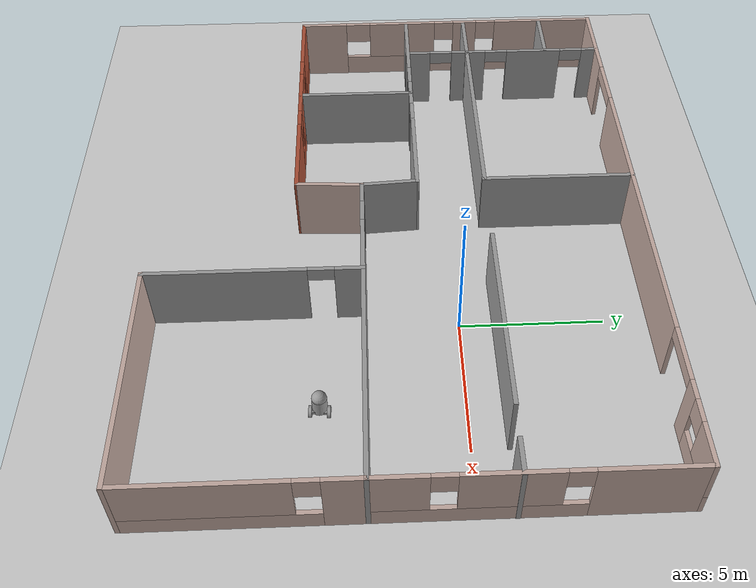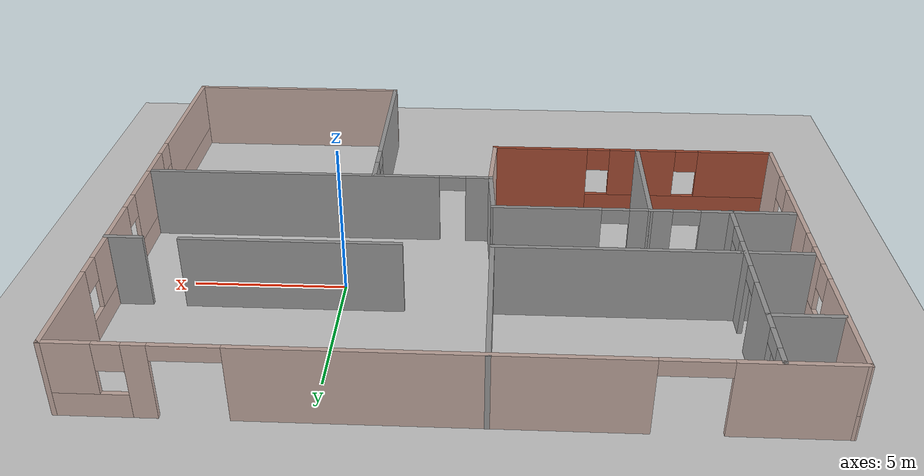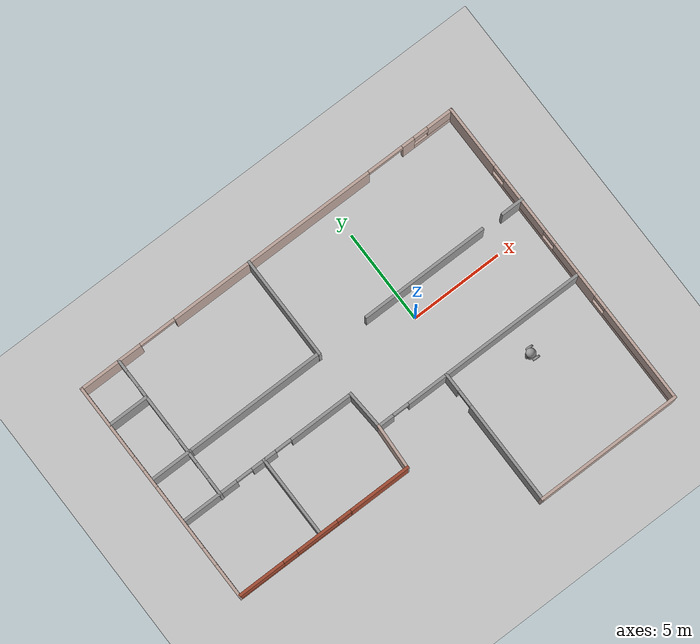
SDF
<sdf version="1.6">
 <world name="default">
  <model name="ground_plane">
   <static>1</static>
   <link name="link">
    <collision name="collision">
     <geometry><plane><normal>0 0 1</normal><size>100 100</size></plane></geometry>
     <surface><friction><ode><mu>100</mu><mu2>50</mu2></ode></friction></surface>
    </collision>
    <visual name="visual">
     <cast_shadows>0</cast_shadows>
     <geometry><plane><normal>0 0 1</normal><size>100 100</size></plane></geometry>
     <material>
      <script><uri>file://media/materials/scripts/gazebo.material</uri><name>Gazebo/Grey</name></script>
     </material>
    </visual>
   </link>
  </model>
  <model name="MyHouse">
   <pose>-3.71946 -1.98455 0 0 -0 0</pose>
   <link name="Wall_10">
    <pose>-8.45774 0.74582 0 0 -0 3.14159</pose>
    <visual name="Wall_10_Visual_0">
     <pose>-1.97921 0 1.25 0 -0 0</pose>
     <geometry><box><size>0.791588 0.15 2.5</size></box></geometry>
     <material>
      <script><uri>file://media/materials/scripts/gazebo.material</uri><name>Gazebo/Grey</name></script>
      <ambient>1 1 1 1</ambient>
     </material>
     <meta><layer>0</layer></meta>
    </visual>
    <collision name="Wall_10_Collision_0">
     <geometry><box><size>0.791588 0.15 2.5</size></box></geometry>
     <pose>-1.97921 0 1.25 0 -0 0</pose>
    </collision>
    <visual name="Wall_10_Visual_1">
     <pose>0.845794 0 1.25 0 -0 0</pose>
     <geometry><box><size>3.05841 0.15 2.5</size></box></geometry>
     <material>
      <script><uri>file://media/materials/scripts/gazebo.material</uri><name>Gazebo/Grey</name></script>
      <ambient>1 1 1 1</ambient>
     </material>
     <meta><layer>0</layer></meta>
    </visual>
    <collision name="Wall_10_Collision_1">
     <geometry><box><size>3.05841 0.15 2.5</size></box></geometry>
     <pose>0.845794 0 1.25 0 -0 0</pose>
    </collision>
    <visual name="Wall_10_Visual_2">
     <pose>-1.13341 0 2.25 0 -0 0</pose>
     <geometry><box><size>0.9 0.15 0.5</size></box></geometry>
     <material>
      <script><uri>file://media/materials/scripts/gazebo.material</uri><name>Gazebo/Grey</name></script>
      <ambient>1 1 1 1</ambient>
     </material>
     <meta><layer>0</layer></meta>
    </visual>
    <collision name="Wall_10_Collision_2">
     <geometry><box><size>0.9 0.15 0.5</size></box></geometry>
     <pose>-1.13341 0 2.25 0 -0 0</pose>
    </collision>
   </link>
   <link name="Wall_12">
    <pose>-3.60774 0.74582 0 0 -0 0</pose>
    <visual name="Wall_12_Visual_0">
     <pose>-2.24932 0 1.25 0 -0 0</pose>
     <geometry><box><size>0.751361 0.15 2.5</size></box></geometry>
     <material>
      <script><uri>file://media/materials/scripts/gazebo.material</uri><name>Gazebo/Grey</name></script>
      <ambient>1 1 1 1</ambient>
     </material>
     <meta><layer>0</layer></meta>
    </visual>
    <collision name="Wall_12_Collision_0">
     <geometry><box><size>0.751361 0.15 2.5</size></box></geometry>
     <pose>-2.24932 0 1.25 0 -0 0</pose>
    </collision>
    <visual name="Wall_12_Visual_1">
     <pose>0.82568 0 1.25 0 -0 0</pose>
     <geometry><box><size>3.59864 0.15 2.5</size></box></geometry>
     <material>
      <script><uri>file://media/materials/scripts/gazebo.material</uri><name>Gazebo/Grey</name></script>
      <ambient>1 1 1 1</ambient>
     </material>
     <meta><layer>0</layer></meta>
    </visual>
    <collision name="Wall_12_Collision_1">
     <geometry><box><size>3.59864 0.15 2.5</size></box></geometry>
     <pose>0.82568 0 1.25 0 -0 0</pose>
    </collision>
    <visual name="Wall_12_Visual_2">
     <pose>-1.42364 0 2.25 0 -0 0</pose>
     <geometry><box><size>0.9 0.15 0.5</size></box></geometry>
     <material>
      <script><uri>file://media/materials/scripts/gazebo.material</uri><name>Gazebo/Grey</name></script>
      <ambient>1 1 1 1</ambient>
     </material>
     <meta><layer>0</layer></meta>
    </visual>
    <collision name="Wall_12_Collision_2">
     <geometry><box><size>0.9 0.15 0.5</size></box></geometry>
     <pose>-1.42364 0 2.25 0 -0 0</pose>
    </collision>
   </link>
   <link name="Wall_13">
    <collision name="Wall_13_Collision">
     <geometry><box><size>2.15429 0.15 2.5</size></box></geometry>
     <pose>0 0 1.25 0 -0 0</pose>
    </collision>
    <visual name="Wall_13_Visual">
     <pose>0 0 1.25 0 -0 0</pose>
     <geometry><box><size>2.15429 0.15 2.5</size></box></geometry>
     <material>
      <script><uri>file://media/materials/scripts/gazebo.material</uri><name>Gazebo/Grey</name></script>
      <ambient>1 1 1 1</ambient>
     </material>
     <meta><layer>0</layer></meta>
    </visual>
    <pose>-0.995053 -0.254364 0 0 0 -1.5082</pose>
   </link>
   <link name="Wall_15">
    <pose>-8.75239 4.64524 0 0 -0 1.5708</pose>
    <visual name="Wall_15_Visual_0">
     <pose>-3.49358 0 1.25 0 -0 0</pose>
     <geometry><box><size>1.01284 0.15 2.5</size></box></geometry>
     <material>
      <script><uri>file://media/materials/scripts/gazebo.material</uri><name>Gazebo/Grey</name></script>
      <ambient>1 1 1 1</ambient>
     </material>
     <meta><layer>0</layer></meta>
    </visual>
    <collision name="Wall_15_Collision_0">
     <geometry><box><size>1.01284 0.15 2.5</size></box></geometry>
     <pose>-3.49358 0 1.25 0 -0 0</pose>
    </collision>
    <visual name="Wall_15_Visual_1">
     <pose>-1.39069 0 1.25 0 -0 0</pose>
     <geometry><box><size>1.39295 0.15 2.5</size></box></geometry>
     <material>
      <script><uri>file://media/materials/scripts/gazebo.material</uri><name>Gazebo/Grey</name></script>
      <ambient>1 1 1 1</ambient>
     </material>
     <meta><layer>0</layer></meta>
    </visual>
    <collision name="Wall_15_Collision_1">
     <geometry><box><size>1.39295 0.15 2.5</size></box></geometry>
     <pose>-1.39069 0 1.25 0 -0 0</pose>
    </collision>
    <visual name="Wall_15_Visual_2">
     <pose>1.31458 0 1.25 0 -0 0</pose>
     <geometry><box><size>2.2176 0.15 2.5</size></box></geometry>
     <material>
      <script><uri>file://media/materials/scripts/gazebo.material</uri><name>Gazebo/Grey</name></script>
      <ambient>1 1 1 1</ambient>
     </material>
     <meta><layer>0</layer></meta>
    </visual>
    <collision name="Wall_15_Collision_2">
     <geometry><box><size>2.2176 0.15 2.5</size></box></geometry>
     <pose>1.31458 0 1.25 0 -0 0</pose>
    </collision>
    <visual name="Wall_15_Visual_3">
     <pose>3.66169 0 1.25 0 -0 0</pose>
     <geometry><box><size>0.676613 0.15 2.5</size></box></geometry>
     <material>
      <script><uri>file://media/materials/scripts/gazebo.material</uri><name>Gazebo/Grey</name></script>
      <ambient>1 1 1 1</ambient>
     </material>
     <meta><layer>0</layer></meta>
    </visual>
    <collision name="Wall_15_Collision_3">
     <geometry><box><size>0.676613 0.15 2.5</size></box></geometry>
     <pose>3.66169 0 1.25 0 -0 0</pose>
    </collision>
    <visual name="Wall_15_Visual_4">
     <pose>-2.53716 0 2.25 0 -0 0</pose>
     <geometry><box><size>0.9 0.15 0.5</size></box></geometry>
     <material>
      <script><uri>file://media/materials/scripts/gazebo.material</uri><name>Gazebo/Grey</name></script>
      <ambient>1 1 1 1</ambient>
     </material>
     <meta><layer>0</layer></meta>
    </visual>
    <collision name="Wall_15_Collision_4">
     <geometry><box><size>0.9 0.15 0.5</size></box></geometry>
     <pose>-2.53716 0 2.25 0 -0 0</pose>
    </collision>
    <visual name="Wall_15_Visual_5">
     <pose>-0.244216 0 2.25 0 -0 0</pose>
     <geometry><box><size>0.9 0.15 0.5</size></box></geometry>
     <material>
      <script><uri>file://media/materials/scripts/gazebo.material</uri><name>Gazebo/Grey</name></script>
      <ambient>1 1 1 1</ambient>
     </material>
     <meta><layer>0</layer></meta>
    </visual>
    <collision name="Wall_15_Collision_5">
     <geometry><box><size>0.9 0.15 0.5</size></box></geometry>
     <pose>-0.244216 0 2.25 0 -0 0</pose>
    </collision>
    <visual name="Wall_15_Visual_6">
     <pose>2.87339 0 2.25 0 -0 0</pose>
     <geometry><box><size>0.9 0.15 0.5</size></box></geometry>
     <material>
      <script><uri>file://media/materials/scripts/gazebo.material</uri><name>Gazebo/Grey</name></script>
      <ambient>1 1 1 1</ambient>
     </material>
     <meta><layer>0</layer></meta>
    </visual>
    <collision name="Wall_15_Collision_6">
     <geometry><box><size>0.9 0.15 0.5</size></box></geometry>
     <pose>2.87339 0 2.25 0 -0 0</pose>
    </collision>
   </link>
   <link name="Wall_17">
    <collision name="Wall_17_Collision">
     <geometry><box><size>7.75 0.15 2.5</size></box></geometry>
     <pose>0 0 1.25 0 -0 0</pose>
    </collision>
    <visual name="Wall_17_Visual">
     <pose>0 0 1.25 0 -0 0</pose>
     <geometry><box><size>7.75 0.15 2.5</size></box></geometry>
     <material>
      <script><uri>file://media/materials/scripts/gazebo.material</uri><name>Gazebo/Grey</name></script>
      <ambient>1 1 1 1</ambient>
     </material>
     <meta><layer>0</layer></meta>
    </visual>
    <pose>-4.87194 3.19421 0 0 -0 0</pose>
   </link>
   <link name="Wall_18">
    <collision name="Wall_18_Collision">
     <geometry><box><size>5.58045 0.15 2.5</size></box></geometry>
     <pose>0 0 1.25 0 -0 0</pose>
    </collision>
    <visual name="Wall_18_Visual">
     <pose>0 0 1.25 0 -0 0</pose>
     <geometry><box><size>5.58045 0.15 2.5</size></box></geometry>
     <material>
      <script><uri>file://media/materials/scripts/gazebo.material</uri><name>Gazebo/Grey</name></script>
      <ambient>1 1 1 1</ambient>
     </material>
     <meta><layer>0</layer></meta>
    </visual>
    <pose>-1.07194 5.88932 0 0 -0 1.5708</pose>
   </link>
   <link name="Wall_2">
    <pose>-0.007362 8.59545 0 0 -0 0</pose>
    <visual name="Wall_2_Visual_0">
     <pose>-9.24484 0 1.25 0 -0 0</pose>
     <geometry><box><size>3.51031 0.15 2.5</size></box></geometry>
     <material>
      <script><uri>file://media/materials/scripts/gazebo.material</uri><name>Gazebo/Grey</name></script>
      <ambient>0.760784 0.662745 0.627451 1</ambient>
     </material>
     <meta><layer>0</layer></meta>
    </visual>
    <collision name="Wall_2_Collision_0">
     <geometry><box><size>3.51031 0.15 2.5</size></box></geometry>
     <pose>-9.24484 0 1.25 0 -0 0</pose>
    </collision>
    <visual name="Wall_2_Visual_1">
     <pose>0.256231 0 1.25 0 -0 0</pose>
     <geometry><box><size>11.4918 0.15 2.5</size></box></geometry>
     <material>
      <script><uri>file://media/materials/scripts/gazebo.material</uri><name>Gazebo/Grey</name></script>
      <ambient>0.760784 0.662745 0.627451 1</ambient>
     </material>
     <meta><layer>0</layer></meta>
    </visual>
    <collision name="Wall_2_Collision_1">
     <geometry><box><size>11.4918 0.15 2.5</size></box></geometry>
     <pose>0.256231 0 1.25 0 -0 0</pose>
    </collision>
    <visual name="Wall_2_Visual_2">
     <pose>8.34893 0 1.25 0 -0 0</pose>
     <geometry><box><size>0.693556 0.15 2.5</size></box></geometry>
     <material>
      <script><uri>file://media/materials/scripts/gazebo.material</uri><name>Gazebo/Grey</name></script>
      <ambient>0.760784 0.662745 0.627451 1</ambient>
     </material>
     <meta><layer>0</layer></meta>
    </visual>
    <collision name="Wall_2_Collision_2">
     <geometry><box><size>0.693556 0.15 2.5</size></box></geometry>
     <pose>8.34893 0 1.25 0 -0 0</pose>
    </collision>
    <visual name="Wall_2_Visual_3">
     <pose>9.84785 0 0.4 0 -0 0</pose>
     <geometry><box><size>2.3043 0.15 0.8</size></box></geometry>
     <material>
      <script><uri>file://media/materials/scripts/gazebo.material</uri><name>Gazebo/Grey</name></script>
      <ambient>0.760784 0.662745 0.627451 1</ambient>
     </material>
     <meta><layer>0</layer></meta>
    </visual>
    <collision name="Wall_2_Collision_3">
     <geometry><box><size>2.3043 0.15 0.8</size></box></geometry>
     <pose>9.84785 0 0.4 0 -0 0</pose>
    </collision>
    <visual name="Wall_2_Visual_4">
     <pose>10.2479 0 1.65 0 -0 0</pose>
     <geometry><box><size>1.50429 0.15 1.7</size></box></geometry>
     <material>
      <script><uri>file://media/materials/scripts/gazebo.material</uri><name>Gazebo/Grey</name></script>
      <ambient>0.760784 0.662745 0.627451 1</ambient>
     </material>
     <meta><layer>0</layer></meta>
    </visual>
    <collision name="Wall_2_Collision_4">
     <geometry><box><size>1.50429 0.15 1.7</size></box></geometry>
     <pose>10.2479 0 1.65 0 -0 0</pose>
    </collision>
    <visual name="Wall_2_Visual_5">
     <pose>9.09571 0 2.05 0 -0 0</pose>
     <geometry><box><size>0.8 0.15 0.9</size></box></geometry>
     <material>
      <script><uri>file://media/materials/scripts/gazebo.material</uri><name>Gazebo/Grey</name></script>
      <ambient>0.760784 0.662745 0.627451 1</ambient>
     </material>
     <meta><layer>0</layer></meta>
    </visual>
    <collision name="Wall_2_Collision_5">
     <geometry><box><size>0.8 0.15 0.9</size></box></geometry>
     <pose>9.09571 0 2.05 0 -0 0</pose>
    </collision>
    <visual name="Wall_2_Visual_6">
     <pose>-6.48969 0 2.25 0 -0 0</pose>
     <geometry><box><size>2 0.15 0.5</size></box></geometry>
     <material>
      <script><uri>file://media/materials/scripts/gazebo.material</uri><name>Gazebo/Grey</name></script>
      <ambient>0.760784 0.662745 0.627451 1</ambient>
     </material>
     <meta><layer>0</layer></meta>
    </visual>
    <collision name="Wall_2_Collision_6">
     <geometry><box><size>2 0.15 0.5</size></box></geometry>
     <pose>-6.48969 0 2.25 0 -0 0</pose>
    </collision>
    <visual name="Wall_2_Visual_7">
     <pose>7.00215 0 2.25 0 -0 0</pose>
     <geometry><box><size>2 0.15 0.5</size></box></geometry>
     <material>
      <script><uri>file://media/materials/scripts/gazebo.material</uri><name>Gazebo/Grey</name></script>
      <ambient>0.760784 0.662745 0.627451 1</ambient>
     </material>
     <meta><layer>0</layer></meta>
    </visual>
    <collision name="Wall_2_Collision_7">
     <geometry><box><size>2 0.15 0.5</size></box></geometry>
     <pose>7.00215 0 2.25 0 -0 0</pose>
    </collision>
   </link>
   <link name="Wall_20">
    <collision name="Wall_20_Collision">
     <geometry><box><size>2.25 0.15 2.5</size></box></geometry>
     <pose>0 0 1.25 0 -0 0</pose>
    </collision>
    <visual name="Wall_20_Visual">
     <pose>0 0 1.25 0 -0 0</pose>
     <geometry><box><size>2.25 0.15 2.5</size></box></geometry>
     <material>
      <script><uri>file://media/materials/scripts/gazebo.material</uri><name>Gazebo/Grey</name></script>
      <ambient>1 1 1 1</ambient>
     </material>
     <meta><layer>0</layer></meta>
    </visual>
    <pose>-9.72194 3.19421 0 0 -0 3.14159</pose>
   </link>
   <link name="Wall_23">
    <collision name="Wall_23_Collision">
     <geometry><box><size>2.25 0.15 2.5</size></box></geometry>
     <pose>0 0 1.25 0 -0 0</pose>
    </collision>
    <visual name="Wall_23_Visual">
     <pose>0 0 1.25 0 -0 0</pose>
     <geometry><box><size>2.25 0.15 2.5</size></box></geometry>
     <material>
      <script><uri>file://media/materials/scripts/gazebo.material</uri><name>Gazebo/Grey</name></script>
      <ambient>1 1 1 1</ambient>
     </material>
     <meta><layer>0</layer></meta>
    </visual>
    <pose>-9.8024 6.45261 0 0 -0 3.14159</pose>
   </link>
   <link name="Wall_25">
    <collision name="Wall_25_Collision">
     <geometry><box><size>7 0.15 2.5</size></box></geometry>
     <pose>0 0 1.25 0 -0 0</pose>
    </collision>
    <visual name="Wall_25_Visual">
     <pose>0 0 1.25 0 -0 0</pose>
     <geometry><box><size>7 0.15 2.5</size></box></geometry>
     <material>
      <script><uri>file://media/materials/scripts/gazebo.material</uri><name>Gazebo/Grey</name></script>
      <ambient>1 1 1 1</ambient>
     </material>
     <meta><layer>0</layer></meta>
    </visual>
    <pose>5.17189 3.19421 0 0 -0 0</pose>
   </link>
   <link name="Wall_27">
    <collision name="Wall_27_Collision">
     <geometry><box><size>1.25 0.15 2.5</size></box></geometry>
     <pose>0 0 1.25 0 -0 0</pose>
    </collision>
    <visual name="Wall_27_Visual">
     <pose>0 0 1.25 0 -0 0</pose>
     <geometry><box><size>1.25 0.15 2.5</size></box></geometry>
     <material>
      <script><uri>file://media/materials/scripts/gazebo.material</uri><name>Gazebo/Grey</name></script>
      <ambient>1 1 1 1</ambient>
     </material>
     <meta><layer>0</layer></meta>
    </visual>
    <pose>10.3825 3.17409 0 0 -0 0</pose>
   </link>
   <link name="Wall_29">
    <pose>10.9176 -4.92955 0 0 0 -1.5708</pose>
    <visual name="Wall_29_Visual_0">
     <pose>-3.06879 0 1.25 0 -0 0</pose>
     <geometry><box><size>1.36242 0.15 2.5</size></box></geometry>
     <material>
      <script><uri>file://media/materials/scripts/gazebo.material</uri><name>Gazebo/Grey</name></script>
      <ambient>0.760784 0.662745 0.627451 1</ambient>
     </material>
     <meta><layer>0</layer></meta>
    </visual>
    <collision name="Wall_29_Collision_0">
     <geometry><box><size>1.36242 0.15 2.5</size></box></geometry>
     <pose>-3.06879 0 1.25 0 -0 0</pose>
    </collision>
    <visual name="Wall_29_Visual_1">
     <pose>0.681209 0 0.35 0 -0 0</pose>
     <geometry><box><size>6.13758 0.15 0.7</size></box></geometry>
     <material>
      <script><uri>file://media/materials/scripts/gazebo.material</uri><name>Gazebo/Grey</name></script>
      <ambient>0.760784 0.662745 0.627451 1</ambient>
     </material>
     <meta><layer>0</layer></meta>
    </visual>
    <collision name="Wall_29_Collision_1">
     <geometry><box><size>6.13758 0.15 0.7</size></box></geometry>
     <pose>0.681209 0 0.35 0 -0 0</pose>
    </collision>
    <visual name="Wall_29_Visual_2">
     <pose>1.08121 0 1.6 0 -0 0</pose>
     <geometry><box><size>5.33758 0.15 1.8</size></box></geometry>
     <material>
      <script><uri>file://media/materials/scripts/gazebo.material</uri><name>Gazebo/Grey</name></script>
      <ambient>0.760784 0.662745 0.627451 1</ambient>
     </material>
     <meta><layer>0</layer></meta>
    </visual>
    <collision name="Wall_29_Collision_2">
     <geometry><box><size>5.33758 0.15 1.8</size></box></geometry>
     <pose>1.08121 0 1.6 0 -0 0</pose>
    </collision>
    <visual name="Wall_29_Visual_3">
     <pose>-1.98758 0 2.1 0 -0 0</pose>
     <geometry><box><size>0.8 0.15 0.8</size></box></geometry>
     <material>
      <script><uri>file://media/materials/scripts/gazebo.material</uri><name>Gazebo/Grey</name></script>
      <ambient>0.760784 0.662745 0.627451 1</ambient>
     </material>
     <meta><layer>0</layer></meta>
    </visual>
    <collision name="Wall_29_Collision_3">
     <geometry><box><size>0.8 0.15 0.8</size></box></geometry>
     <pose>-1.98758 0 2.1 0 -0 0</pose>
    </collision>
   </link>
   <link name="Wall_3">
    <pose>10.9176 3.67045 0 0 0 -1.5708</pose>
    <visual name="Wall_3_Visual_0">
     <pose>-3.27648 0 1.25 0 -0 0</pose>
     <geometry><box><size>3.44705 0.15 2.5</size></box></geometry>
     <material>
      <script><uri>file://media/materials/scripts/gazebo.material</uri><name>Gazebo/Grey</name></script>
      <ambient>0.760784 0.662745 0.627451 1</ambient>
     </material>
     <meta><layer>0</layer></meta>
    </visual>
    <collision name="Wall_3_Collision_0">
     <geometry><box><size>3.44705 0.15 2.5</size></box></geometry>
     <pose>-3.27648 0 1.25 0 -0 0</pose>
    </collision>
    <visual name="Wall_3_Visual_1">
     <pose>1.72352 0 0.35 0 -0 0</pose>
     <geometry><box><size>6.55295 0.15 0.7</size></box></geometry>
     <material>
      <script><uri>file://media/materials/scripts/gazebo.material</uri><name>Gazebo/Grey</name></script>
      <ambient>0.760784 0.662745 0.627451 1</ambient>
     </material>
     <meta><layer>0</layer></meta>
    </visual>
    <collision name="Wall_3_Collision_1">
     <geometry><box><size>6.55295 0.15 0.7</size></box></geometry>
     <pose>1.72352 0 0.35 0 -0 0</pose>
    </collision>
    <visual name="Wall_3_Visual_2">
     <pose>0.788006 0 1.6 0 -0 0</pose>
     <geometry><box><size>3.08192 0.15 1.8</size></box></geometry>
     <material>
      <script><uri>file://media/materials/scripts/gazebo.material</uri><name>Gazebo/Grey</name></script>
      <ambient>0.760784 0.662745 0.627451 1</ambient>
     </material>
     <meta><layer>0</layer></meta>
    </visual>
    <collision name="Wall_3_Collision_2">
     <geometry><box><size>3.08192 0.15 1.8</size></box></geometry>
     <pose>0.788006 0 1.6 0 -0 0</pose>
    </collision>
    <visual name="Wall_3_Visual_3">
     <pose>4.06448 0 1.6 0 -0 0</pose>
     <geometry><box><size>1.87103 0.15 1.8</size></box></geometry>
     <material>
      <script><uri>file://media/materials/scripts/gazebo.material</uri><name>Gazebo/Grey</name></script>
      <ambient>0.760784 0.662745 0.627451 1</ambient>
     </material>
     <meta><layer>0</layer></meta>
    </visual>
    <collision name="Wall_3_Collision_3">
     <geometry><box><size>1.87103 0.15 1.8</size></box></geometry>
     <pose>4.06448 0 1.6 0 -0 0</pose>
    </collision>
    <visual name="Wall_3_Visual_4">
     <pose>-1.15295 0 2.1 0 -0 0</pose>
     <geometry><box><size>0.8 0.15 0.8</size></box></geometry>
     <material>
      <script><uri>file://media/materials/scripts/gazebo.material</uri><name>Gazebo/Grey</name></script>
      <ambient>0.760784 0.662745 0.627451 1</ambient>
     </material>
     <meta><layer>0</layer></meta>
    </visual>
    <collision name="Wall_3_Collision_4">
     <geometry><box><size>0.8 0.15 0.8</size></box></geometry>
     <pose>-1.15295 0 2.1 0 -0 0</pose>
    </collision>
    <visual name="Wall_3_Visual_5">
     <pose>2.72897 0 2.1 0 -0 0</pose>
     <geometry><box><size>0.8 0.15 0.8</size></box></geometry>
     <material>
      <script><uri>file://media/materials/scripts/gazebo.material</uri><name>Gazebo/Grey</name></script>
      <ambient>0.760784 0.662745 0.627451 1</ambient>
     </material>
     <meta><layer>0</layer></meta>
    </visual>
    <collision name="Wall_3_Collision_5">
     <geometry><box><size>0.8 0.15 0.8</size></box></geometry>
     <pose>2.72897 0 2.1 0 -0 0</pose>
    </collision>
   </link>
   <link name="Wall_30">
    <collision name="Wall_30_Collision">
     <geometry><box><size>8 0.15 2.5</size></box></geometry>
     <pose>0 0 1.25 0 -0 0</pose>
    </collision>
    <visual name="Wall_30_Visual">
     <pose>0 0 1.25 0 -0 0</pose>
     <geometry><box><size>8 0.15 2.5</size></box></geometry>
     <material>
      <script><uri>file://media/materials/scripts/gazebo.material</uri><name>Gazebo/Grey</name></script>
      <ambient>0.760784 0.662745 0.627451 1</ambient>
     </material>
     <meta><layer>0</layer></meta>
    </visual>
    <pose>6.99264 -8.60455 0 0 -0 3.14159</pose>
   </link>
   <link name="Wall_31">
    <pose>3.06764 -4.92955 0 0 -0 1.5708</pose>
    <visual name="Wall_31_Visual_0">
     <pose>-0.966637 0 1.25 0 -0 0</pose>
     <geometry><box><size>5.56673 0.15 2.5</size></box></geometry>
     <material>
      <script><uri>file://media/materials/scripts/gazebo.material</uri><name>Gazebo/Grey</name></script>
      <ambient>1 1 1 1</ambient>
     </material>
     <meta><layer>0</layer></meta>
    </visual>
    <collision name="Wall_31_Collision_0">
     <geometry><box><size>5.56673 0.15 2.5</size></box></geometry>
     <pose>-0.966637 0 1.25 0 -0 0</pose>
    </collision>
    <visual name="Wall_31_Visual_1">
     <pose>3.23336 0 1.25 0 -0 0</pose>
     <geometry><box><size>1.03327 0.15 2.5</size></box></geometry>
     <material>
      <script><uri>file://media/materials/scripts/gazebo.material</uri><name>Gazebo/Grey</name></script>
      <ambient>1 1 1 1</ambient>
     </material>
     <meta><layer>0</layer></meta>
    </visual>
    <collision name="Wall_31_Collision_1">
     <geometry><box><size>1.03327 0.15 2.5</size></box></geometry>
     <pose>3.23336 0 1.25 0 -0 0</pose>
    </collision>
    <visual name="Wall_31_Visual_2">
     <pose>2.26673 0 2.25 0 -0 0</pose>
     <geometry><box><size>0.9 0.15 0.5</size></box></geometry>
     <material>
      <script><uri>file://media/materials/scripts/gazebo.material</uri><name>Gazebo/Grey</name></script>
      <ambient>1 1 1 1</ambient>
     </material>
     <meta><layer>0</layer></meta>
    </visual>
    <collision name="Wall_31_Collision_2">
     <geometry><box><size>0.9 0.15 0.5</size></box></geometry>
     <pose>2.26673 0 2.25 0 -0 0</pose>
    </collision>
   </link>
   <link name="Wall_4">
    <pose>4.99264 -1.25455 0 0 -0 3.14159</pose>
    <visual name="Wall_4_Visual_0">
     <pose>-0.913533 0 1.25 0 -0 0</pose>
     <geometry><box><size>10.1729 0.15 2.5</size></box></geometry>
     <material>
      <script><uri>file://media/materials/scripts/gazebo.material</uri><name>Gazebo/Grey</name></script>
      <ambient>1 1 1 1</ambient>
     </material>
     <meta><layer>0</layer></meta>
    </visual>
    <collision name="Wall_4_Collision_0">
     <geometry><box><size>10.1729 0.15 2.5</size></box></geometry>
     <pose>-0.913533 0 1.25 0 -0 0</pose>
    </collision>
    <visual name="Wall_4_Visual_1">
     <pose>5.53647 0 1.25 0 -0 0</pose>
     <geometry><box><size>0.927067 0.15 2.5</size></box></geometry>
     <material>
      <script><uri>file://media/materials/scripts/gazebo.material</uri><name>Gazebo/Grey</name></script>
      <ambient>1 1 1 1</ambient>
     </material>
     <meta><layer>0</layer></meta>
    </visual>
    <collision name="Wall_4_Collision_1">
     <geometry><box><size>0.927067 0.15 2.5</size></box></geometry>
     <pose>5.53647 0 1.25 0 -0 0</pose>
    </collision>
    <visual name="Wall_4_Visual_2">
     <pose>4.62293 0 2.25 0 -0 0</pose>
     <geometry><box><size>0.9 0.15 0.5</size></box></geometry>
     <material>
      <script><uri>file://media/materials/scripts/gazebo.material</uri><name>Gazebo/Grey</name></script>
      <ambient>1 1 1 1</ambient>
     </material>
     <meta><layer>0</layer></meta>
    </visual>
    <collision name="Wall_4_Collision_2">
     <geometry><box><size>0.9 0.15 0.5</size></box></geometry>
     <pose>4.62293 0 2.25 0 -0 0</pose>
    </collision>
   </link>
   <link name="Wall_5">
    <collision name="Wall_5_Collision">
     <geometry><box><size>2.50297 0.15 2.5</size></box></geometry>
     <pose>0 0 1.25 0 -0 0</pose>
    </collision>
    <visual name="Wall_5_Visual">
     <pose>0 0 1.25 0 -0 0</pose>
     <geometry><box><size>2.50297 0.15 2.5</size></box></geometry>
     <material>
      <script><uri>file://media/materials/scripts/gazebo.material</uri><name>Gazebo/Grey</name></script>
      <ambient>0.760784 0.662745 0.627451 1</ambient>
     </material>
     <meta><layer>0</layer></meta>
    </visual>
    <pose>-0.992458 -2.4295 0 0 0 -1.6219</pose>
   </link>
   <link name="Wall_6">
    <pose>-5.97755 -3.60445 0 0 -0 3.14159</pose>
    <visual name="Wall_6_Visual_0">
     <pose>-3.30088 0 1.25 0 -0 0</pose>
     <geometry><box><size>3.39823 0.15 2.5</size></box></geometry>
     <material>
      <script><uri>file://media/materials/scripts/gazebo.material</uri><name>Gazebo/Bricks</name></script>
      <ambient>1 1 1 1</ambient>
     </material>
     <meta><layer>0</layer></meta>
    </visual>
    <collision name="Wall_6_Collision_0">
     <geometry><box><size>3.39823 0.15 2.5</size></box></geometry>
     <pose>-3.30088 0 1.25 0 -0 0</pose>
    </collision>
    <visual name="Wall_6_Visual_1">
     <pose>1.69912 0 0.35 0 -0 0</pose>
     <geometry><box><size>6.60177 0.15 0.7</size></box></geometry>
     <material>
      <script><uri>file://media/materials/scripts/gazebo.material</uri><name>Gazebo/Bricks</name></script>
      <ambient>1 1 1 1</ambient>
     </material>
     <meta><layer>0</layer></meta>
    </visual>
    <collision name="Wall_6_Collision_1">
     <geometry><box><size>6.60177 0.15 0.7</size></box></geometry>
     <pose>1.69912 0 0.35 0 -0 0</pose>
    </collision>
    <visual name="Wall_6_Visual_2">
     <pose>0.37341 0 1.6 0 -0 0</pose>
     <geometry><box><size>2.35035 0.15 1.8</size></box></geometry>
     <material>
      <script><uri>file://media/materials/scripts/gazebo.material</uri><name>Gazebo/Bricks</name></script>
      <ambient>1 1 1 1</ambient>
     </material>
     <meta><layer>0</layer></meta>
    </visual>
    <collision name="Wall_6_Collision_2">
     <geometry><box><size>2.35035 0.15 1.8</size></box></geometry>
     <pose>0.37341 0 1.6 0 -0 0</pose>
    </collision>
    <visual name="Wall_6_Visual_3">
     <pose>3.67429 0 1.6 0 -0 0</pose>
     <geometry><box><size>2.65141 0.15 1.8</size></box></geometry>
     <material>
      <script><uri>file://media/materials/scripts/gazebo.material</uri><name>Gazebo/Bricks</name></script>
      <ambient>1 1 1 1</ambient>
     </material>
     <meta><layer>0</layer></meta>
    </visual>
    <collision name="Wall_6_Collision_3">
     <geometry><box><size>2.65141 0.15 1.8</size></box></geometry>
     <pose>3.67429 0 1.6 0 -0 0</pose>
    </collision>
    <visual name="Wall_6_Visual_4">
     <pose>-1.20177 0 2.1 0 -0 0</pose>
     <geometry><box><size>0.8 0.15 0.8</size></box></geometry>
     <material>
      <script><uri>file://media/materials/scripts/gazebo.material</uri><name>Gazebo/Bricks</name></script>
      <ambient>1 1 1 1</ambient>
     </material>
     <meta><layer>0</layer></meta>
    </visual>
    <collision name="Wall_6_Collision_4">
     <geometry><box><size>0.8 0.15 0.8</size></box></geometry>
     <pose>-1.20177 0 2.1 0 -0 0</pose>
    </collision>
    <visual name="Wall_6_Visual_5">
     <pose>1.94859 0 2.1 0 -0 0</pose>
     <geometry><box><size>0.8 0.15 0.8</size></box></geometry>
     <material>
      <script><uri>file://media/materials/scripts/gazebo.material</uri><name>Gazebo/Bricks</name></script>
      <ambient>1 1 1 1</ambient>
     </material>
     <meta><layer>0</layer></meta>
    </visual>
    <collision name="Wall_6_Collision_5">
     <geometry><box><size>0.8 0.15 0.8</size></box></geometry>
     <pose>1.94859 0 2.1 0 -0 0</pose>
    </collision>
   </link>
   <link name="Wall_7">
    <pose>-10.9175 2.4955 0 0 -0 1.57324</pose>
    <visual name="Wall_7_Visual_0">
     <pose>-5.23558 0 1.25 0 -0 0</pose>
     <geometry><box><size>1.87887 0.15 2.5</size></box></geometry>
     <material>
      <script><uri>file://media/materials/scripts/gazebo.material</uri><name>Gazebo/Grey</name></script>
      <ambient>0.760784 0.662745 0.627451 1</ambient>
     </material>
     <meta><layer>0</layer></meta>
    </visual>
    <collision name="Wall_7_Collision_0">
     <geometry><box><size>1.87887 0.15 2.5</size></box></geometry>
     <pose>-5.23558 0 1.25 0 -0 0</pose>
    </collision>
    <visual name="Wall_7_Visual_1">
     <pose>0.939435 0 0.425 0 -0 0</pose>
     <geometry><box><size>10.4712 0.15 0.85</size></box></geometry>
     <material>
      <script><uri>file://media/materials/scripts/gazebo.material</uri><name>Gazebo/Grey</name></script>
      <ambient>0.760784 0.662745 0.627451 1</ambient>
     </material>
     <meta><layer>0</layer></meta>
    </visual>
    <collision name="Wall_7_Collision_1">
     <geometry><box><size>10.4712 0.15 0.85</size></box></geometry>
     <pose>0.939435 0 0.425 0 -0 0</pose>
    </collision>
    <visual name="Wall_7_Visual_2">
     <pose>-1.90728 0 1.675 0 -0 0</pose>
     <geometry><box><size>2.77773 0.15 1.65</size></box></geometry>
     <material>
      <script><uri>file://media/materials/scripts/gazebo.material</uri><name>Gazebo/Grey</name></script>
      <ambient>0.760784 0.662745 0.627451 1</ambient>
     </material>
     <meta><layer>0</layer></meta>
    </visual>
    <collision name="Wall_7_Collision_2">
     <geometry><box><size>2.77773 0.15 1.65</size></box></geometry>
     <pose>-1.90728 0 1.675 0 -0 0</pose>
    </collision>
    <visual name="Wall_7_Visual_3">
     <pose>0.772042 0 1.675 0 -0 0</pose>
     <geometry><box><size>0.980926 0.15 1.65</size></box></geometry>
     <material>
      <script><uri>file://media/materials/scripts/gazebo.material</uri><name>Gazebo/Grey</name></script>
      <ambient>0.760784 0.662745 0.627451 1</ambient>
     </material>
     <meta><layer>0</layer></meta>
    </visual>
    <collision name="Wall_7_Collision_3">
     <geometry><box><size>0.980926 0.15 1.65</size></box></geometry>
     <pose>0.772042 0 1.675 0 -0 0</pose>
    </collision>
    <visual name="Wall_7_Visual_4">
     <pose>4.11876 0 1.675 0 -0 0</pose>
     <geometry><box><size>4.11251 0.15 1.65</size></box></geometry>
     <material>
      <script><uri>file://media/materials/scripts/gazebo.material</uri><name>Gazebo/Grey</name></script>
      <ambient>0.760784 0.662745 0.627451 1</ambient>
     </material>
     <meta><layer>0</layer></meta>
    </visual>
    <collision name="Wall_7_Collision_4">
     <geometry><box><size>4.11251 0.15 1.65</size></box></geometry>
     <pose>4.11876 0 1.675 0 -0 0</pose>
    </collision>
    <visual name="Wall_7_Visual_5">
     <pose>-3.79615 0 2.075 0 -0 0</pose>
     <geometry><box><size>1 0.15 0.85</size></box></geometry>
     <material>
      <script><uri>file://media/materials/scripts/gazebo.material</uri><name>Gazebo/Grey</name></script>
      <ambient>0.760784 0.662745 0.627451 1</ambient>
     </material>
     <meta><layer>0</layer></meta>
    </visual>
    <collision name="Wall_7_Collision_5">
     <geometry><box><size>1 0.15 0.85</size></box></geometry>
     <pose>-3.79615 0 2.075 0 -0 0</pose>
    </collision>
    <visual name="Wall_7_Visual_6">
     <pose>-0.118421 0 2.075 0 -0 0</pose>
     <geometry><box><size>0.8 0.15 0.85</size></box></geometry>
     <material>
      <script><uri>file://media/materials/scripts/gazebo.material</uri><name>Gazebo/Grey</name></script>
      <ambient>0.760784 0.662745 0.627451 1</ambient>
     </material>
     <meta><layer>0</layer></meta>
    </visual>
    <collision name="Wall_7_Collision_6">
     <geometry><box><size>0.8 0.15 0.85</size></box></geometry>
     <pose>-0.118421 0 2.075 0 -0 0</pose>
    </collision>
    <visual name="Wall_7_Visual_7">
     <pose>1.66251 0 2.075 0 -0 0</pose>
     <geometry><box><size>0.8 0.15 0.85</size></box></geometry>
     <material>
      <script><uri>file://media/materials/scripts/gazebo.material</uri><name>Gazebo/Grey</name></script>
      <ambient>0.760784 0.662745 0.627451 1</ambient>
     </material>
     <meta><layer>0</layer></meta>
    </visual>
    <collision name="Wall_7_Collision_7">
     <geometry><box><size>0.8 0.15 0.85</size></box></geometry>
     <pose>1.66251 0 2.075 0 -0 0</pose>
    </collision>
   </link>
   <link name="Wall_9">
    <collision name="Wall_9_Collision">
     <geometry><box><size>4.5 0.15 2.5</size></box></geometry>
     <pose>0 0 1.25 0 -0 0</pose>
    </collision>
    <visual name="Wall_9_Visual">
     <pose>0 0 1.25 0 -0 0</pose>
     <geometry><box><size>4.5 0.15 2.5</size></box></geometry>
     <material>
      <script><uri>file://media/materials/scripts/gazebo.material</uri><name>Gazebo/Grey</name></script>
      <ambient>1 1 1 1</ambient>
     </material>
     <meta><layer>0</layer></meta>
    </visual>
    <pose>-6.15775 -1.42918 0 0 -0 1.5708</pose>
   </link>
   <static>1</static>
  </model>
  <model name="RobotOne_0">
   <link name="link_0">
    <pose>-0.028333 -0 0.133333 0 -0 0</pose>
    <inertial>
     <mass>1</mass>
     <inertia><ixx>0.145833</ixx><ixy>0</ixy><ixz>0</ixz><iyy>0.145833</iyy><iyz>0</iyz><izz>0.125</izz></inertia>
    </inertial>
    <visual name="visual">
     <geometry><cylinder><radius>0.25</radius><length>0.6</length></cylinder></geometry>
     <material>
      <lighting>1</lighting>
      <script><uri>file://media/materials/scripts/gazebo.material</uri><name>Gazebo/Grey</name></script>
      <shader type="pixel"><normal_map>__default__</normal_map></shader>
      <ambient>0.3 0.3 0.3 1</ambient>
      <diffuse>0.7 0.7 0.7 1</diffuse>
      <specular>0.01 0.01 0.01 1</specular>
      <emissive>0 0 0 1</emissive>
     </material>
    </visual>
    <collision name="collision">
     <geometry><cylinder><radius>0.25</radius><length>0.6</length></cylinder></geometry>
     <surface>
      <friction>
       <ode><mu>1</mu><mu2>1</mu2><fdir1>0 0 0</fdir1><slip1>0</slip1><slip2>0</slip2></ode>
       <torsional>
        <coefficient>1</coefficient>
        <patch_radius>0</patch_radius>
        <surface_radius>0</surface_radius>
        <use_patch_radius>1</use_patch_radius>
        <ode><slip>0</slip></ode>
       </torsional>
      </friction>
      <bounce><restitution_coefficient>0</restitution_coefficient><threshold>1e+06</threshold></bounce>
      <contact>
       <collide_without_contact>0</collide_without_contact>
       <collide_without_contact_bitmask>1</collide_without_contact_bitmask>
       <collide_bitmask>1</collide_bitmask>
       <ode>
        <soft_cfm>0</soft_cfm>
        <soft_erp>0.2</soft_erp>
        <kp>1e+13</kp>
        <kd>1</kd>
        <max_vel>0.01</max_vel>
        <min_depth>0</min_depth>
       </ode>
       <bullet>
        <split_impulse>1</split_impulse>
        <split_impulse_penetration_threshold>-0.01</split_impulse_penetration_threshold>
        <soft_cfm>0</soft_cfm>
        <soft_erp>0.2</soft_erp>
        <kp>1e+13</kp>
        <kd>1</kd>
       </bullet>
      </contact>
     </surface>
    </collision>
   </link>
   <link name="link_1">
    <pose>0.081667 -0 -0.116667 0 -0 0</pose>
    <inertial>
     <mass>1</mass>
     <inertia>
      <ixx>0.166667</ixx>
      <ixy>0</ixy>
      <ixz>0</ixz>
      <iyy>0.166667</iyy>
      <iyz>0</iyz>
      <izz>0.166667</izz>
     </inertia>
    </inertial>
    <visual name="visual">
     <geometry><box><size>0.2 0.5 0.1</size></box></geometry>
     <material>
      <lighting>1</lighting>
      <script><uri>file://media/materials/scripts/gazebo.material</uri><name>Gazebo/Grey</name></script>
      <shader type="pixel"><normal_map>__default__</normal_map></shader>
      <ambient>0.3 0.3 0.3 1</ambient>
      <diffuse>0.7 0.7 0.7 1</diffuse>
      <specular>0.01 0.01 0.01 1</specular>
      <emissive>0 0 0 1</emissive>
     </material>
    </visual>
    <collision name="collision">
     <geometry><box><size>0.2 0.5 0.1</size></box></geometry>
     <surface>
      <friction>
       <ode><mu>1</mu><mu2>1</mu2><fdir1>0 0 0</fdir1><slip1>0</slip1><slip2>0</slip2></ode>
       <torsional>
        <coefficient>1</coefficient>
        <patch_radius>0</patch_radius>
        <surface_radius>0</surface_radius>
        <use_patch_radius>1</use_patch_radius>
        <ode><slip>0</slip></ode>
       </torsional>
      </friction>
      <bounce><restitution_coefficient>0</restitution_coefficient><threshold>1e+06</threshold></bounce>
      <contact>
       <collide_without_contact>0</collide_without_contact>
       <collide_without_contact_bitmask>1</collide_without_contact_bitmask>
       <collide_bitmask>1</collide_bitmask>
       <ode>
        <soft_cfm>0</soft_cfm>
        <soft_erp>0.2</soft_erp>
        <kp>1e+13</kp>
        <kd>1</kd>
        <max_vel>0.01</max_vel>
        <min_depth>0</min_depth>
       </ode>
       <bullet>
        <split_impulse>1</split_impulse>
        <split_impulse_penetration_threshold>-0.01</split_impulse_penetration_threshold>
        <soft_cfm>0</soft_cfm>
        <soft_erp>0.2</soft_erp>
        <kp>1e+13</kp>
        <kd>1</kd>
       </bullet>
      </contact>
     </surface>
    </collision>
   </link>
   <link name="link_2">
    <pose>0.101667 -0.300019 -0.116667 1.5707 -0 0</pose>
    <inertial>
     <mass>1</mass>
     <inertia><ixx>0.145833</ixx><ixy>0</ixy><ixz>0</ixz><iyy>0.145833</iyy><iyz>0</iyz><izz>0.125</izz></inertia>
    </inertial>
    <visual name="visual">
     <geometry><cylinder><radius>0.2</radius><length>0.1</length></cylinder></geometry>
     <material>
      <lighting>1</lighting>
      <script><uri>file://media/materials/scripts/gazebo.material</uri><name>Gazebo/Grey</name></script>
      <shader type="pixel"><normal_map>__default__</normal_map></shader>
      <ambient>0.3 0.3 0.3 1</ambient>
      <diffuse>0.7 0.7 0.7 1</diffuse>
      <specular>0.01 0.01 0.01 1</specular>
      <emissive>0 0 0 1</emissive>
     </material>
    </visual>
    <collision name="collision">
     <geometry><cylinder><radius>0.2</radius><length>0.1</length></cylinder></geometry>
     <surface>
      <friction>
       <ode><mu>1</mu><mu2>1</mu2><fdir1>0 0 0</fdir1><slip1>0</slip1><slip2>0</slip2></ode>
       <torsional>
        <coefficient>1</coefficient>
        <patch_radius>0</patch_radius>
        <surface_radius>0</surface_radius>
        <use_patch_radius>1</use_patch_radius>
        <ode><slip>0</slip></ode>
       </torsional>
      </friction>
      <bounce><restitution_coefficient>0</restitution_coefficient><threshold>1e+06</threshold></bounce>
      <contact>
       <collide_without_contact>0</collide_without_contact>
       <collide_without_contact_bitmask>1</collide_without_contact_bitmask>
       <collide_bitmask>1</collide_bitmask>
       <ode>
        <soft_cfm>0</soft_cfm>
        <soft_erp>0.2</soft_erp>
        <kp>1e+13</kp>
        <kd>1</kd>
        <max_vel>0.01</max_vel>
        <min_depth>0</min_depth>
       </ode>
       <bullet>
        <split_impulse>1</split_impulse>
        <split_impulse_penetration_threshold>-0.01</split_impulse_penetration_threshold>
        <soft_cfm>0</soft_cfm>
        <soft_erp>0.2</soft_erp>
        <kp>1e+13</kp>
        <kd>1</kd>
       </bullet>
      </contact>
     </surface>
    </collision>
   </link>
   <link name="link_2_clone">
    <pose>0.101667 0.300019 -0.116667 1.5707 -0 0</pose>
    <inertial>
     <mass>1</mass>
     <inertia><ixx>0.145833</ixx><ixy>0</ixy><ixz>0</ixz><iyy>0.145833</iyy><iyz>0</iyz><izz>0.125</izz></inertia>
    </inertial>
    <visual name="visual">
     <geometry><cylinder><radius>0.2</radius><length>0.1</length></cylinder></geometry>
     <material>
      <lighting>1</lighting>
      <script><uri>file://media/materials/scripts/gazebo.material</uri><name>Gazebo/Grey</name></script>
      <shader type="pixel"><normal_map>__default__</normal_map></shader>
      <ambient>0.3 0.3 0.3 1</ambient>
      <diffuse>0.7 0.7 0.7 1</diffuse>
      <specular>0.01 0.01 0.01 1</specular>
      <emissive>0 0 0 1</emissive>
     </material>
    </visual>
    <collision name="collision">
     <geometry><cylinder><radius>0.2</radius><length>0.1</length></cylinder></geometry>
     <surface>
      <friction>
       <ode><mu>1</mu><mu2>1</mu2><fdir1>0 0 0</fdir1><slip1>0</slip1><slip2>0</slip2></ode>
       <torsional>
        <coefficient>1</coefficient>
        <patch_radius>0</patch_radius>
        <surface_radius>0</surface_radius>
        <use_patch_radius>1</use_patch_radius>
        <ode><slip>0</slip></ode>
       </torsional>
      </friction>
      <bounce><restitution_coefficient>0</restitution_coefficient><threshold>1e+06</threshold></bounce>
      <contact>
       <collide_without_contact>0</collide_without_contact>
       <collide_without_contact_bitmask>1</collide_without_contact_bitmask>
       <collide_bitmask>1</collide_bitmask>
       <ode>
        <soft_cfm>0</soft_cfm>
        <soft_erp>0.2</soft_erp>
        <kp>1e+13</kp>
        <kd>1</kd>
        <max_vel>0.01</max_vel>
        <min_depth>0</min_depth>
       </ode>
       <bullet>
        <split_impulse>1</split_impulse>
        <split_impulse_penetration_threshold>-0.01</split_impulse_penetration_threshold>
        <soft_cfm>0</soft_cfm>
        <soft_erp>0.2</soft_erp>
        <kp>1e+13</kp>
        <kd>1</kd>
       </bullet>
      </contact>
     </surface>
    </collision>
   </link>
   <link name="link_3">
    <pose>-0.228333 -0 -0.216667 0 -0 0</pose>
    <inertial>
     <mass>1</mass>
     <inertia><ixx>0.1</ixx><ixy>0</ixy><ixz>0</ixz><iyy>0.1</iyy><iyz>0</iyz><izz>0.1</izz></inertia>
    </inertial>
    <visual name="visual">
     <geometry><sphere><radius>0.1</radius></sphere></geometry>
     <material>
      <lighting>1</lighting>
      <script><uri>file://media/materials/scripts/gazebo.material</uri><name>Gazebo/Grey</name></script>
      <shader type="pixel"><normal_map>__default__</normal_map></shader>
      <ambient>0.3 0.3 0.3 1</ambient>
      <diffuse>0.7 0.7 0.7 1</diffuse>
      <specular>0.01 0.01 0.01 1</specular>
      <emissive>0 0 0 1</emissive>
     </material>
    </visual>
    <collision name="collision">
     <geometry><sphere><radius>0.1</radius></sphere></geometry>
     <surface>
      <friction>
       <ode><mu>1</mu><mu2>1</mu2><fdir1>0 0 0</fdir1><slip1>0</slip1><slip2>0</slip2></ode>
       <torsional>
        <coefficient>1</coefficient>
        <patch_radius>0</patch_radius>
        <surface_radius>0</surface_radius>
        <use_patch_radius>1</use_patch_radius>
        <ode><slip>0</slip></ode>
       </torsional>
      </friction>
      <bounce><restitution_coefficient>0</restitution_coefficient><threshold>1e+06</threshold></bounce>
      <contact>
       <collide_without_contact>0</collide_without_contact>
       <collide_without_contact_bitmask>1</collide_without_contact_bitmask>
       <collide_bitmask>1</collide_bitmask>
       <ode>
        <soft_cfm>0</soft_cfm>
        <soft_erp>0.2</soft_erp>
        <kp>1e+13</kp>
        <kd>1</kd>
        <max_vel>0.01</max_vel>
        <min_depth>0</min_depth>
       </ode>
       <bullet>
        <split_impulse>1</split_impulse>
        <split_impulse_penetration_threshold>-0.01</split_impulse_penetration_threshold>
        <soft_cfm>0</soft_cfm>
        <soft_erp>0.2</soft_erp>
        <kp>1e+13</kp>
        <kd>1</kd>
       </bullet>
      </contact>
     </surface>
    </collision>
   </link>
   <link name="link_4">
    <pose>-0.028333 -0 0.433333 0 -0 0</pose>
    <inertial>
     <mass>1</mass>
     <inertia><ixx>0.1</ixx><ixy>0</ixy><ixz>0</ixz><iyy>0.1</iyy><iyz>0</iyz><izz>0.1</izz></inertia>
    </inertial>
    <visual name="visual">
     <geometry><sphere><radius>0.25</radius></sphere></geometry>
     <material>
      <lighting>1</lighting>
      <script><uri>file://media/materials/scripts/gazebo.material</uri><name>Gazebo/Grey</name></script>
      <shader type="pixel"><normal_map>__default__</normal_map></shader>
      <ambient>0.3 0.3 0.3 1</ambient>
      <diffuse>0.7 0.7 0.7 1</diffuse>
      <specular>0.01 0.01 0.01 1</specular>
      <emissive>0 0 0 1</emissive>
     </material>
    </visual>
    <collision name="collision">
     <geometry><sphere><radius>0.25</radius></sphere></geometry>
     <surface>
      <friction>
       <ode><mu>1</mu><mu2>1</mu2><fdir1>0 0 0</fdir1><slip1>0</slip1><slip2>0</slip2></ode>
       <torsional>
        <coefficient>1</coefficient>
        <patch_radius>0</patch_radius>
        <surface_radius>0</surface_radius>
        <use_patch_radius>1</use_patch_radius>
        <ode><slip>0</slip></ode>
       </torsional>
      </friction>
      <bounce><restitution_coefficient>0</restitution_coefficient><threshold>1e+06</threshold></bounce>
      <contact>
       <collide_without_contact>0</collide_without_contact>
       <collide_without_contact_bitmask>1</collide_without_contact_bitmask>
       <collide_bitmask>1</collide_bitmask>
       <ode>
        <soft_cfm>0</soft_cfm>
        <soft_erp>0.2</soft_erp>
        <kp>1e+13</kp>
        <kd>1</kd>
        <max_vel>0.01</max_vel>
        <min_depth>0</min_depth>
       </ode>
       <bullet>
        <split_impulse>1</split_impulse>
        <split_impulse_penetration_threshold>-0.01</split_impulse_penetration_threshold>
        <soft_cfm>0</soft_cfm>
        <soft_erp>0.2</soft_erp>
        <kp>1e+13</kp>
        <kd>1</kd>
       </bullet>
      </contact>
     </surface>
    </collision>
   </link>
   <joint name="link_0_JOINT_7" type="revolute">
    <parent>link_0</parent>
    <child>link_3</child>
    <axis>
     <xyz>1 0 0</xyz>
     <use_parent_model_frame>0</use_parent_model_frame>
     <limit>
      <lower>-1.79769e+308</lower>
      <upper>1.79769e+308</upper>
      <effort>-1</effort>
      <velocity>-1</velocity>
     </limit>
     <dynamics>
      <spring_reference>0</spring_reference>
      <spring_stiffness>0</spring_stiffness>
      <damping>0</damping>
     </dynamics>
    </axis>
    <physics>
     <ode><limit><cfm>0</cfm><erp>0.2</erp></limit><suspension><cfm>0</cfm><erp>0.2</erp></suspension></ode>
    </physics>
   </joint>
   <joint name="link_0_JOINT_8" type="fixed">
    <parent>link_0</parent>
    <child>link_4</child>
    <physics>
     <ode><limit><cfm>0</cfm><erp>0.2</erp></limit><suspension><cfm>0</cfm><erp>0.2</erp></suspension></ode>
    </physics>
   </joint>
   <joint name="link_1_JOINT_0" type="revolute">
    <parent>link_1</parent>
    <child>link_2</child>
    <pose>0 0 0 0 0 -0.05</pose>
    <axis>
     <xyz>0 0 1</xyz>
     <use_parent_model_frame>0</use_parent_model_frame>
     <limit>
      <lower>-1.79769e+308</lower>
      <upper>1.79769e+308</upper>
      <effort>-1</effort>
      <velocity>-1</velocity>
     </limit>
     <dynamics>
      <spring_reference>0</spring_reference>
      <spring_stiffness>0</spring_stiffness>
      <damping>0</damping>
     </dynamics>
    </axis>
    <physics>
     <ode><limit><cfm>0</cfm><erp>0.2</erp></limit><suspension><cfm>0</cfm><erp>0.2</erp></suspension></ode>
    </physics>
   </joint>
   <joint name="link_1_JOINT_1" type="revolute">
    <parent>link_1</parent>
    <child>link_2_clone</child>
    <axis>
     <xyz>0 0 1</xyz>
     <use_parent_model_frame>0</use_parent_model_frame>
     <limit>
      <lower>-1.79769e+308</lower>
      <upper>1.79769e+308</upper>
      <effort>-1</effort>
      <velocity>-1</velocity>
     </limit>
     <dynamics>
      <spring_reference>0</spring_reference>
      <spring_stiffness>0</spring_stiffness>
      <damping>0</damping>
     </dynamics>
    </axis>
    <physics>
     <ode><limit><cfm>0</cfm><erp>0.2</erp></limit><suspension><cfm>0</cfm><erp>0.2</erp></suspension></ode>
    </physics>
   </joint>
   <joint name="link_1_JOINT_5" type="fixed">
    <parent>link_1</parent>
    <child>link_0</child>
    <physics>
     <ode><limit><cfm>0</cfm><erp>0.2</erp></limit><suspension><cfm>0</cfm><erp>0.2</erp></suspension></ode>
    </physics>
   </joint>
   <static>0</static>
   <pose>3.32633 -4.72976 0.31667 3e-06 -1.3e-05 -0.061643</pose>
  </model>
 </world>
</sdf>
